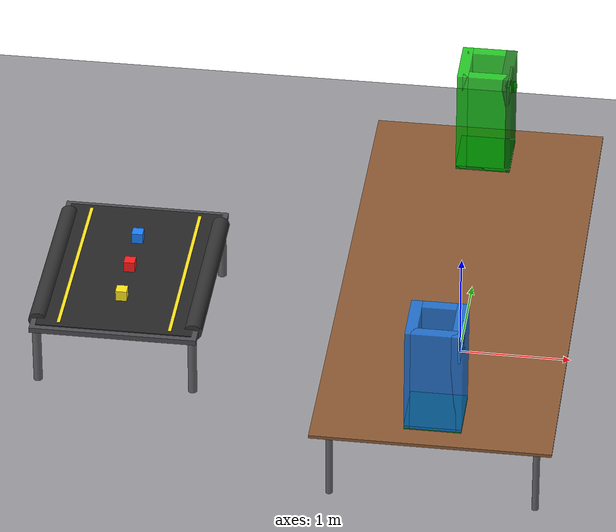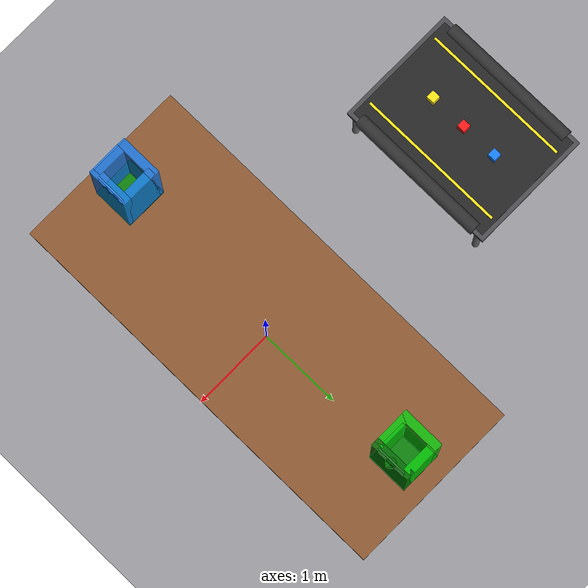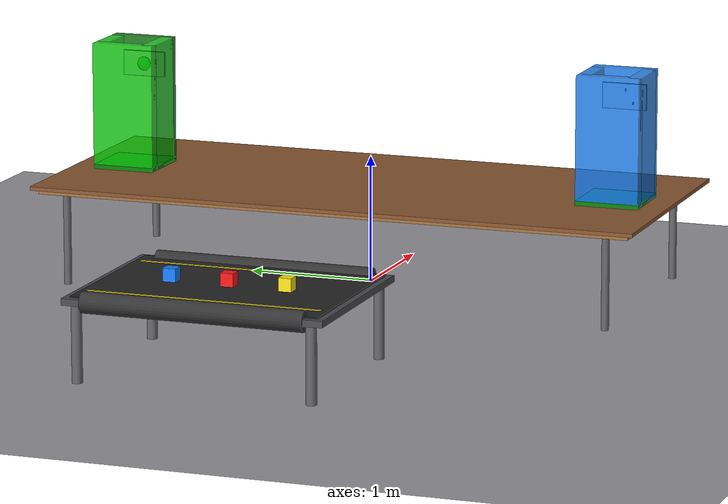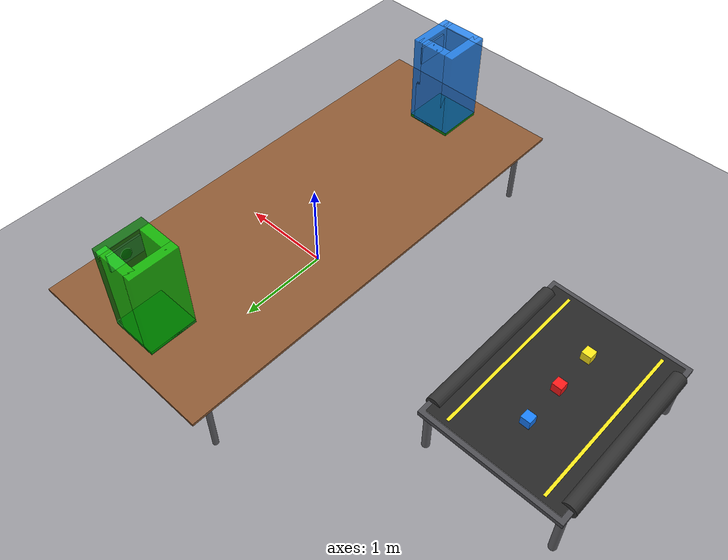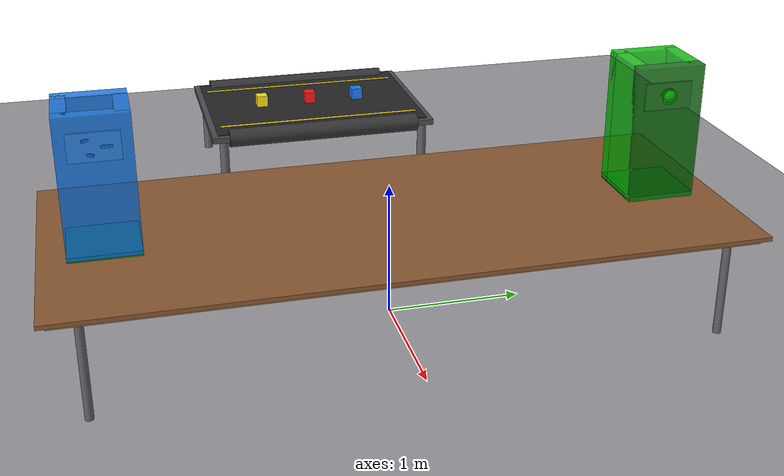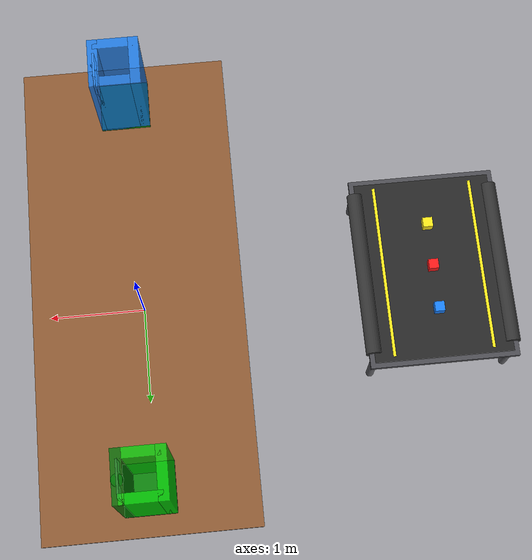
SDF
<?xml version="1.0" ?>
<sdf version='1.7'>
  <world name='waste_sorting_world'>

    <!-- Configuración de física -->
    <physics type='bullet'>
      <max_step_size>0.001</max_step_size>
      <real_time_factor>1</real_time_factor>
      <real_time_update_rate>1000</real_time_update_rate>
    </physics>

    <!-- Gravedad -->
    <gravity>0 0 -9.8</gravity>
    <magnetic_field>6e-06 2.3e-05 -4.2e-05</magnetic_field>

    <!-- Configuración de escena mejorada -->
    <scene>
      <ambient>0.7 0.7 0.75 1</ambient>
      <background>0.75 0.85 0.95 1</background>
      <shadows>1</shadows>
      <sky>
        <clouds>
          <speed>0.3</speed>
        </clouds>
      </sky>
    </scene>

    <!-- Luz principal mejorada -->
    <light name='sun' type='directional'>
      <cast_shadows>1</cast_shadows>
      <pose>5 3 10 0 -0 0</pose>
      <diffuse>1.0 0.95 0.9 1</diffuse>
      <specular>0.4 0.4 0.35 1</specular>
      <direction>-0.5 0.2 -0.8</direction>
    </light>

    <!-- Luz de relleno -->
    <light name='fill_light' type='point'>
      <pose>-3 -3 4 0 0 0</pose>
      <diffuse>0.4 0.45 0.5 1</diffuse>
      <specular>0.1 0.1 0.15 1</specular>
      <attenuation>
        <range>25</range>
        <constant>0.3</constant>
        <linear>0.01</linear>
        <quadratic>0.001</quadratic>
      </attenuation>
      <cast_shadows>0</cast_shadows>
    </light>

    <!-- Luz cenital sobre la mesa -->
    <light name='spot_light' type='point'>
      <pose>0 0 3.5 0 0 0</pose>
      <diffuse>0.9 0.9 0.95 1</diffuse>
      <specular>0.2 0.2 0.2 1</specular>
      <attenuation>
        <range>20</range>
        <constant>0.4</constant>
        <linear>0.015</linear>
        <quadratic>0.002</quadratic>
      </attenuation>
      <cast_shadows>0</cast_shadows>
    </light>

    <!-- Plano del suelo mejorado -->
    <model name='ground_plane'>
      <static>1</static>
      <link name='link'>
        <collision name='collision'>
          <geometry>
            <plane>
              <normal>0 0 1</normal>
              <size>100 100</size>
            </plane>
          </geometry>
          <surface>
            <friction>
              <ode>
                <mu>100</mu>
                <mu2>50</mu2>
              </ode>
            </friction>
          </surface>
        </collision>
        <visual name='visual'>
          <cast_shadows>0</cast_shadows>
          <geometry>
            <plane>
              <normal>0 0 1</normal>
              <size>100 100</size>
            </plane>
          </geometry>
          <material>
            <ambient>0.5 0.5 0.52 1</ambient>
            <diffuse>0.6 0.6 0.62 1</diffuse>
            <specular>0.1 0.1 0.1 1</specular>
          </material>
        </visual>
      </link>
    </model>

    <!-- Mesa de trabajo mejorada -->
    <model name='work_table'>
      <static>1</static>
      <link name='link'>

        <!-- Superficie de la mesa -->
        <collision name='surface'>
          <pose>0 0 0.75 0 0 0</pose>
          <geometry>
            <box>
              <size>2.0 4.8 0.05</size>
            </box>
          </geometry>
          <surface>
            <friction>
              <ode>
                <mu>0.6</mu>
                <mu2>0.6</mu2>
              </ode>
            </friction>
          </surface>
        </collision>
        <visual name='surface_visual'>
          <pose>0 0 0.75 0 0 0</pose>
          <geometry>
            <box>
              <size>2.0 4.8 0.05</size>
            </box>
          </geometry>
          <material>
            <ambient>0.55 0.35 0.2 1</ambient>
            <diffuse>0.65 0.45 0.25 1</diffuse>
            <specular>0.4 0.3 0.2 1</specular>
            <emissive>0 0 0 0</emissive>
          </material>
        </visual>

        <!-- Borde decorativo de la mesa -->
        <visual name='table_edge'>
          <pose>0 0 0.775 0 0 0</pose>
          <geometry>
            <box>
              <size>2.1 4.9 0.03</size>
            </box>
          </geometry>
          <material>
            <ambient>0.45 0.28 0.15 1</ambient>
            <diffuse>0.55 0.35 0.2 1</diffuse>
            <specular>0.3 0.2 0.1 1</specular>
          </material>
        </visual>

        <!-- Patas de la mesa mejoradas -->
        <!-- Pata frontal izquierda -->
        <collision name='leg_fl'>
          <pose>0.9 2.2 0.375 0 0 0</pose>
          <geometry>
            <cylinder>
              <radius>0.03</radius>
              <length>0.75</length>
            </cylinder>
          </geometry>
        </collision>
        <visual name='leg_fl_visual'>
          <pose>0.9 2.2 0.375 0 0 0</pose>
          <geometry>
            <cylinder>
              <radius>0.03</radius>
              <length>0.75</length>
            </cylinder>
          </geometry>
          <material>
            <ambient>0.3 0.3 0.32 1</ambient>
            <diffuse>0.4 0.4 0.42 1</diffuse>
            <specular>0.6 0.6 0.6 1</specular>
          </material>
        </visual>

        <!-- Pata frontal derecha -->
        <collision name='leg_fr'>
          <pose>0.9 -2.2 0.375 0 0 0</pose>
          <geometry>
            <cylinder>
              <radius>0.03</radius>
              <length>0.75</length>
            </cylinder>
          </geometry>
        </collision>
        <visual name='leg_fr_visual'>
          <pose>0.9 -2.2 0.375 0 0 0</pose>
          <geometry>
            <cylinder>
              <radius>0.03</radius>
              <length>0.75</length>
            </cylinder>
          </geometry>
          <material>
            <ambient>0.3 0.3 0.32 1</ambient>
            <diffuse>0.4 0.4 0.42 1</diffuse>
            <specular>0.6 0.6 0.6 1</specular>
          </material>
        </visual>

        <!-- Pata trasera izquierda -->
        <collision name='leg_bl'>
          <pose>-0.9 2.2 0.375 0 0 0</pose>
          <geometry>
            <cylinder>
              <radius>0.03</radius>
              <length>0.75</length>
            </cylinder>
          </geometry>
        </collision>
        <visual name='leg_bl_visual'>
          <pose>-0.9 2.2 0.375 0 0 0</pose>
          <geometry>
            <cylinder>
              <radius>0.03</radius>
              <length>0.75</length>
            </cylinder>
          </geometry>
          <material>
            <ambient>0.3 0.3 0.32 1</ambient>
            <diffuse>0.4 0.4 0.42 1</diffuse>
            <specular>0.6 0.6 0.6 1</specular>
          </material>
        </visual>

        <!-- Pata trasera derecha -->
        <collision name='leg_br'>
          <pose>-0.9 -2.2 0.375 0 0 0</pose>
          <geometry>
            <cylinder>
              <radius>0.03</radius>
              <length>0.75</length>
            </cylinder>
          </geometry>
        </collision>
        <visual name='leg_br_visual'>
          <pose>-0.9 -2.2 0.375 0 0 0</pose>
          <geometry>
            <cylinder>
              <radius>0.03</radius>
              <length>0.75</length>
            </cylinder>
          </geometry>
          <material>
            <ambient>0.3 0.3 0.32 1</ambient>
            <diffuse>0.4 0.4 0.42 1</diffuse>
            <specular>0.6 0.6 0.6 1</specular>
          </material>
        </visual>

      </link>
      <pose>0 0 0 0 0 0</pose>
    </model>

    <!-- Contenedor IZQUIERDO (Verde - Orgánicos) mejorado -->
    <model name='bin_left'>
      <static>0</static>
      <link name='link'>
        <inertial>
          <mass>3</mass>
          <inertia>
            <ixx>0.2</ixx>
            <iyy>0.2</iyy>
            <izz>0.1</izz>
          </inertia>
        </inertial>

        <!-- Base del contenedor -->
        <collision name='base'>
          <pose>0 0 0.025 0 0 0</pose>
          <geometry>
            <box>
              <size>0.5 0.5 0.05</size>
            </box>
          </geometry>
        </collision>
        <visual name='base_visual'>
          <pose>0 0 0.025 0 0 0</pose>
          <geometry>
            <box>
              <size>0.5 0.5 0.05</size>
            </box>
          </geometry>
          <material>
            <ambient>0 0.4 0 1</ambient>
            <diffuse>0.05 0.5 0.05 1</diffuse>
            <specular>0.5 0.5 0.5 1</specular>
          </material>
        </visual>

        <!-- Pared frontal -->
        <collision name='wall_front'>
          <pose>0.2 0 0.525 0 0 0</pose>
          <geometry>
            <box>
              <size>0.1 0.5 1.0</size>
            </box>
          </geometry>
        </collision>
        <visual name='wall_front_visual'>
          <pose>0.2 0 0.525 0 0 0</pose>
          <geometry>
            <box>
              <size>0.1 0.5 1.0</size>
            </box>
          </geometry>
          <material>
            <ambient>0 0.35 0 0.85</ambient>
            <diffuse>0.05 0.45 0.05 0.85</diffuse>
            <specular>0.3 0.3 0.3 1</specular>
          </material>
        </visual>

        <!-- Pared trasera -->
        <collision name='wall_back'>
          <pose>-0.2 0 0.525 0 0 0</pose>
          <geometry>
            <box>
              <size>0.1 0.5 1.0</size>
            </box>
          </geometry>
        </collision>
        <visual name='wall_back_visual'>
          <pose>-0.2 0 0.525 0 0 0</pose>
          <geometry>
            <box>
              <size>0.1 0.5 1.0</size>
            </box>
          </geometry>
          <material>
            <ambient>0 0.7 0 0.85</ambient>
            <diffuse>0.05 0.8 0.05 0.85</diffuse>
            <specular>0.3 0.3 0.3 1</specular>
          </material>
        </visual>

        <!-- Pared izquierda -->
        <collision name='wall_left'>
          <pose>0 0.2 0.525 0 0 0</pose>
          <geometry>
            <box>
              <size>0.4 0.1 1.0</size>
            </box>
          </geometry>
        </collision>
        <visual name='wall_left_visual'>
          <pose>0 0.2 0.525 0 0 0</pose>
          <geometry>
            <box>
              <size>0.4 0.1 1.0</size>
            </box>
          </geometry>
          <material>
            <ambient>0 0.7 0 0.85</ambient>
            <diffuse>0.05 0.8 0.05 0.85</diffuse>
            <specular>0.3 0.3 0.3 1</specular>
          </material>
        </visual>

        <!-- Pared derecha -->
        <collision name='wall_right'>
          <pose>0 -0.2 0.525 0 0 0</pose>
          <geometry>
            <box>
              <size>0.4 0.1 1.0</size>
            </box>
          </geometry>
        </collision>
        <visual name='wall_right_visual'>
          <pose>0 -0.2 0.525 0 0 0</pose>
          <geometry>
            <box>
              <size>0.4 0.1 1.0</size>
            </box>
          </geometry>
          <material>
            <ambient>0 0.7 0 0.85</ambient>
            <diffuse>0.05 0.8 0.05 0.85</diffuse>
            <specular>0.3 0.3 0.3 1</specular>
          </material>
        </visual>

        <!-- Etiqueta ORGÁNICO -->
        <visual name='label_organico'>
          <pose>0.21 0 0.8 0 0 0</pose>
          <geometry>
            <box>
              <size>0.02 0.35 0.2</size>
            </box>
          </geometry>
          <material>
            <ambient>0.95 0.95 0.95 1</ambient>
            <diffuse>1 1 1 1</diffuse>
            <specular>0.3 0.3 0.3 1</specular>
          </material>
        </visual>

        <!-- Símbolo decorativo en etiqueta -->
        <visual name='symbol_organic'>
          <pose>0.22 0 0.8 0 0 0</pose>
          <geometry>
            <sphere>
              <radius>0.06</radius>
            </sphere>
          </geometry>
          <material>
            <ambient>0 0.5 0 1</ambient>
            <diffuse>0 0.6 0 1</diffuse>
            <specular>0.2 0.2 0.2 1</specular>
          </material>
        </visual>

      </link>
      <pose>0 2.0 0.775 0 0 0</pose>
    </model>

    <!-- Contenedor DERECHO (Azul - Reciclables) mejorado -->
    <model name='bin_right'>
      <static>0</static>
      <link name='link'>
        <inertial>
          <mass>3</mass>
          <inertia>
            <ixx>0.2</ixx>
            <iyy>0.2</iyy>
            <izz>0.1</izz>
          </inertia>
        </inertial>

        <!-- Base del contenedor -->
        <collision name='base'>
          <pose>0 0 0.025 0 0 0</pose>
          <geometry>
            <box>
              <size>0.5 0.5 0.05</size>
            </box>
          </geometry>
        </collision>
        <visual name='base_visual'>
          <pose>0 0 0.025 0 0 0</pose>
          <geometry>
            <box>
              <size>0.5 0.5 0.05</size>
            </box>
          </geometry>
          <material>
            <ambient>0 0.4 0 1</ambient>
            <diffuse>0.05 0.5 0.05 1</diffuse>
            <specular>0.5 0.5 0.5 1</specular>
          </material>
        </visual>

        <!-- Pared frontal -->
        <collision name='wall_front'>
          <pose>0.2 0 0.525 0 0 0</pose>
          <geometry>
            <box>
              <size>0.1 0.5 1.0</size>
            </box>
          </geometry>
        </collision>
        <visual name='wall_front_visual'>
          <pose>0.2 0 0.525 0 0 0</pose>
          <geometry>
            <box>
              <size>0.1 0.5 1.0</size>
            </box>
          </geometry>
          <material>
            <ambient>0 0.4 0.9 0.85</ambient>
            <diffuse>0.1 0.5 0.95 0.85</diffuse>
            <specular>0.3 0.3 0.3 1</specular>
          </material>
        </visual>

        <!-- Pared trasera -->
        <collision name='wall_back'>
          <pose>-0.2 0 0.525 0 0 0</pose>
          <geometry>
            <box>
              <size>0.1 0.5 1.0</size>
            </box>
          </geometry>
        </collision>
        <visual name='wall_back_visual'>
          <pose>-0.2 0 0.525 0 0 0</pose>
          <geometry>
            <box>
              <size>0.1 0.5 1.0</size>
            </box>
          </geometry>
          <material>
            <ambient>0 0.4 0.9 0.85</ambient>
            <diffuse>0.1 0.5 0.95 0.85</diffuse>
            <specular>0.3 0.3 0.3 1</specular>
          </material>
        </visual>

        <!-- Pared izquierda -->
        <collision name='wall_left'>
          <pose>0 0.2 0.525 0 0 0</pose>
          <geometry>
            <box>
              <size>0.4 0.1 1.0</size>
            </box>
          </geometry>
        </collision>
        <visual name='wall_left_visual'>
          <pose>0 0.2 0.525 0 0 0</pose>
          <geometry>
            <box>
              <size>0.4 0.1 1.0</size>
            </box>
          </geometry>
          <material>
            <ambient>0 0.4 0.9 0.85</ambient>
            <diffuse>0.1 0.5 0.95 0.85</diffuse>
            <specular>0.3 0.3 0.3 1</specular>
          </material>
        </visual>

        <!-- Pared derecha -->
        <collision name='wall_right'>
          <pose>0 -0.2 0.525 0 0 0</pose>
          <geometry>
            <box>
              <size>0.4 0.1 1.0</size>
            </box>
          </geometry>
        </collision>
        <visual name='wall_right_visual'>
          <pose>0 -0.2 0.525 0 0 0</pose>
          <geometry>
            <box>
              <size>0.4 0.1 1.0</size>
            </box>
          </geometry>
          <material>
            <ambient>0 0.4 0.9 0.85</ambient>
            <diffuse>0.1 0.5 0.95 0.85</diffuse>
            <specular>0.3 0.3 0.3 1</specular>
          </material>
        </visual>

        <!-- Etiqueta RECICLABLE -->
        <visual name='label_reciclable'>
          <pose>0.21 0 0.8 0 0 0</pose>
          <geometry>
            <box>
              <size>0.02 0.35 0.2</size>
            </box>
          </geometry>
          <material>
            <ambient>0.95 0.95 0.95 1</ambient>
            <diffuse>1 1 1 1</diffuse>
            <specular>0.3 0.3 0.3 1</specular>
          </material>
        </visual>

        <!-- Símbolo de reciclaje decorativo -->
        <visual name='symbol_recycle_1'>
          <pose>0.22 0.08 0.8 0 0 0</pose>
          <geometry>
            <box>
              <size>0.01 0.08 0.02</size>
            </box>
          </geometry>
          <material>
            <ambient>0 0.3 0.7 1</ambient>
            <diffuse>0 0.4 0.8 1</diffuse>
          </material>
        </visual>
        <visual name='symbol_recycle_2'>
          <pose>0.22 -0.04 0.85 0 0 0.5236</pose>
          <geometry>
            <box>
              <size>0.01 0.08 0.02</size>
            </box>
          </geometry>
          <material>
            <ambient>0 0.3 0.7 1</ambient>
            <diffuse>0 0.4 0.8 1</diffuse>
          </material>
        </visual>
        <visual name='symbol_recycle_3'>
          <pose>0.22 -0.04 0.75 0 0 -0.5236</pose>
          <geometry>
            <box>
              <size>0.01 0.08 0.02</size>
            </box>
          </geometry>
          <material>
            <ambient>0 0.3 0.7 1</ambient>
            <diffuse>0 0.4 0.8 1</diffuse>
          </material>
        </visual>

      </link>
      <pose>0 -2.0 0.775 0 0 0</pose>
    </model>

    <!-- Faja transportadora -->
    <model name='conveyor_belt'>
      <static>1</static>
      <link name='link'>

        <!-- Base de la faja -->
        <collision name='base_frame'>
          <pose>-3.0 0 0.6 0 0 0</pose>
          <geometry>
            <box>
              <size>1.5 2.0 0.05</size>
            </box>
          </geometry>
        </collision>
        <visual name='base_frame_visual'>
          <pose>-3.0 0 0.6 0 0 0</pose>
          <geometry>
            <box>
              <size>1.5 2.0 0.05</size>
            </box>
          </geometry>
          <material>
            <ambient>0.2 0.2 0.22 1</ambient>
            <diffuse>0.3 0.3 0.32 1</diffuse>
            <specular>0.5 0.5 0.5 1</specular>
          </material>
        </visual>

        <!-- Superficie de la faja (negra) -->
        <collision name='belt_surface'>
          <pose>-3.0 0 0.625 0 0 0</pose>
          <geometry>
            <box>
              <size>1.4 1.9 0.02</size>
            </box>
          </geometry>
          <surface>
            <friction>
              <ode>
                <mu>0.8</mu>
                <mu2>0.8</mu2>
              </ode>
            </friction>
          </surface>
        </collision>
        <visual name='belt_surface_visual'>
          <pose>-3.0 0 0.625 0 0 0</pose>
          <geometry>
            <box>
              <size>1.4 1.9 0.02</size>
            </box>
          </geometry>
          <material>
            <ambient>0.1 0.1 0.1 1</ambient>
            <diffuse>0.15 0.15 0.15 1</diffuse>
            <specular>0.2 0.2 0.2 1</specular>
          </material>
        </visual>

        <!-- Líneas amarillas en la faja -->
        <visual name='belt_line_1'>
          <pose>-2.5 0 0.636 0 0 0</pose>
          <geometry>
            <box>
              <size>0.03 1.8 0.005</size>
            </box>
          </geometry>
          <material>
            <ambient>0.9 0.8 0 1</ambient>
            <diffuse>1 0.9 0.1 1</diffuse>
          </material>
        </visual>
        <visual name='belt_line_2'>
          <pose>-3.5 0 0.636 0 0 0</pose>
          <geometry>
            <box>
              <size>0.03 1.8 0.005</size>
            </box>
          </geometry>
          <material>
            <ambient>0.9 0.8 0 1</ambient>
            <diffuse>1 0.9 0.1 1</diffuse>
          </material>
        </visual>

        <!-- Soporte izquierdo frontal -->
        <collision name='support_lf'>
          <pose>-2.3 0.9 0.3 0 0 0</pose>
          <geometry>
            <cylinder>
              <radius>0.04</radius>
              <length>0.6</length>
            </cylinder>
          </geometry>
        </collision>
        <visual name='support_lf_visual'>
          <pose>-2.3 0.9 0.3 0 0 0</pose>
          <geometry>
            <cylinder>
              <radius>0.04</radius>
              <length>0.6</length>
            </cylinder>
          </geometry>
          <material>
            <ambient>0.3 0.3 0.32 1</ambient>
            <diffuse>0.4 0.4 0.42 1</diffuse>
            <specular>0.6 0.6 0.6 1</specular>
          </material>
        </visual>

        <!-- Soporte derecho frontal -->
        <collision name='support_rf'>
          <pose>-2.3 -0.9 0.3 0 0 0</pose>
          <geometry>
            <cylinder>
              <radius>0.04</radius>
              <length>0.6</length>
            </cylinder>
          </geometry>
        </collision>
        <visual name='support_rf_visual'>
          <pose>-2.3 -0.9 0.3 0 0 0</pose>
          <geometry>
            <cylinder>
              <radius>0.04</radius>
              <length>0.6</length>
            </cylinder>
          </geometry>
          <material>
            <ambient>0.3 0.3 0.32 1</ambient>
            <diffuse>0.4 0.4 0.42 1</diffuse>
            <specular>0.6 0.6 0.6 1</specular>
          </material>
        </visual>

        <!-- Soporte izquierdo trasero -->
        <collision name='support_lb'>
          <pose>-3.7 0.9 0.3 0 0 0</pose>
          <geometry>
            <cylinder>
              <radius>0.04</radius>
              <length>0.6</length>
            </cylinder>
          </geometry>
        </collision>
        <visual name='support_lb_visual'>
          <pose>-3.7 0.9 0.3 0 0 0</pose>
          <geometry>
            <cylinder>
              <radius>0.04</radius>
              <length>0.6</length>
            </cylinder>
          </geometry>
          <material>
            <ambient>0.3 0.3 0.32 1</ambient>
            <diffuse>0.4 0.4 0.42 1</diffuse>
            <specular>0.6 0.6 0.6 1</specular>
          </material>
        </visual>

        <!-- Soporte derecho trasero -->
        <collision name='support_rb'>
          <pose>-3.7 -0.9 0.3 0 0 0</pose>
          <geometry>
            <cylinder>
              <radius>0.04</radius>
              <length>0.6</length>
            </cylinder>
          </geometry>
        </collision>
        <visual name='support_rb_visual'>
          <pose>-3.7 -0.9 0.3 0 0 0</pose>
          <geometry>
            <cylinder>
              <radius>0.04</radius>
              <length>0.6</length>
            </cylinder>
          </geometry>
          <material>
            <ambient>0.3 0.3 0.32 1</ambient>
            <diffuse>0.4 0.4 0.42 1</diffuse>
            <specular>0.6 0.6 0.6 1</specular>
          </material>
        </visual>

        <!-- Rodillo frontal decorativo -->
        <visual name='roller_front'>
          <pose>-2.3 0 0.6 1.5708 0 0</pose>
          <geometry>
            <cylinder>
              <radius>0.08</radius>
              <length>1.7</length>
            </cylinder>
          </geometry>
          <material>
            <ambient>0.15 0.15 0.15 1</ambient>
            <diffuse>0.2 0.2 0.2 1</diffuse>
            <specular>0.3 0.3 0.3 1</specular>
          </material>
        </visual>

        <!-- Rodillo trasero decorativo -->
        <visual name='roller_back'>
          <pose>-3.7 0 0.6 1.5708 0 0</pose>
          <geometry>
            <cylinder>
              <radius>0.08</radius>
              <length>1.7</length>
            </cylinder>
          </geometry>
          <material>
            <ambient>0.15 0.15 0.15 1</ambient>
            <diffuse>0.2 0.2 0.2 1</diffuse>
            <specular>0.3 0.3 0.3 1</specular>
          </material>
        </visual>

      </link>
      <pose>0 0 0 0 0 0</pose>
    </model>

    <!-- Objetos de residuos mejorados -->

    <!-- Cubo ROJO (orgánico) -->
    <model name='waste_organic_1'>
      <static>0</static>
      <link name='link'>
        <inertial>
          <mass>0.01</mass>
          <inertia>
            <ixx>0.00016</ixx>
            <iyy>0.00016</iyy>
            <izz>0.00016</izz>
          </inertia>
        </inertial>
        <collision name='collision'>
          <geometry>
            <box>
              <size>0.1 0.1 0.1</size>
            </box>
          </geometry>
        </collision>
        <visual name='visual'>
          <geometry>
            <box>
              <size>0.1 0.1 0.1</size>
            </box>
          </geometry>
          <material>
            <ambient>0.8 0 0 1</ambient>
            <diffuse>1 0.1 0.1 1</diffuse>
            <specular>0.4 0.4 0.4 1</specular>
          </material>
        </visual>
      </link>
      <pose>-3.0 0 0.685 0 0 0</pose>
    </model>

    <!-- Cubo AZUL (reciclable) -->
    <model name='waste_recyclable_1'>
      <static>0</static>
      <link name='link'>
        <inertial>
          <mass>0.01</mass>
          <inertia>
            <ixx>0.00016</ixx>
            <iyy>0.00016</iyy>
            <izz>0.00016</izz>
          </inertia>
        </inertial>
        <collision name='collision'>
          <geometry>
            <box>
              <size>0.1 0.1 0.1</size>
            </box>
          </geometry>
        </collision>
        <visual name='visual'>
          <geometry>
            <box>
              <size>0.1 0.1 0.1</size>
            </box>
          </geometry>
          <material>
            <ambient>0 0.4 0.9 1</ambient>
            <diffuse>0.1 0.5 1 1</diffuse>
            <specular>0.5 0.5 0.5 1</specular>
          </material>
        </visual>
      </link>
      <pose>-3.0 0.45 0.685 0 0 0</pose>
    </model>

    <!-- Cubo AMARILLO (reciclable) -->
    <model name='waste_recyclable_3'>
      <static>0</static>
      <link name='link'>
        <inertial>
          <mass>0.01</mass>
          <inertia>
            <ixx>0.00016</ixx>
            <iyy>0.00016</iyy>
            <izz>0.00016</izz>
          </inertia>
        </inertial>
        <collision name='collision'>
          <geometry>
            <box>
              <size>0.1 0.1 0.1</size>
            </box>
          </geometry>
        </collision>
        <visual name='visual'>
          <geometry>
            <box>
              <size>0.1 0.1 0.1</size>
            </box>
          </geometry>
          <material>
            <ambient>0.9 0.8 0 1</ambient>
            <diffuse>1 0.9 0.1 1</diffuse>
            <specular>0.5 0.5 0.5 1</specular>
          </material>
        </visual>
      </link>
      <pose>-3.0 -0.45 0.685 0 0 0</pose>
    </model>

    <!-- Configuración de GUI -->
    <gui fullscreen='0'>
      <camera name='user_camera'>
        <pose>2.5 -2.5 2.0 0 0.4 2.36</pose>
        <view_controller>orbit</view_controller>
        <projection_type>perspective</projection_type>
      </camera>
    </gui>

  </world>
</sdf>
